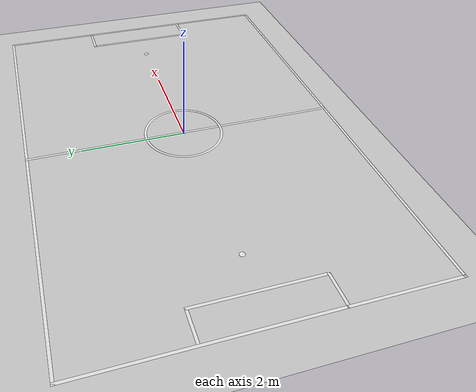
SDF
<?xml version="1.0" ?>
<sdf version="1.4">
  <model name="RoboCup 14 SPL Field">
    <static>true</static>

    <link name="field">
      <pose>0 0 0.01 0 0 0</pose>
      <collision name="collision">
        <geometry>
          <plane>
            <normal>0 0 1</normal>
            <size>10.40 7.40</size>
          </plane>
        </geometry>
        <surface>
          <friction>
            <ode>
              <mu>100</mu>
              <mu2>50</mu2>
            </ode>
          </friction>
        </surface>
      </collision>

      <visual name="carpet">
        <cast_shadows>false</cast_shadows>
        <geometry>
          <plane>
            <normal>0 0 1</normal>
            <size>10.40 7.40</size>
          </plane>
        </geometry>
        <material>
          <script>
            <uri>model://robocup09_spl_field/materials/scripts/</uri>
            <uri>model://robocup09_spl_field/materials/textures/</uri>
            <name>RoboCup/Carpet</name>
          </script>
        </material>
      </visual>

      <visual name="sideline_1">
        <pose>0 3 0.011 0 0 0</pose>
        <cast_shadows>false</cast_shadows>
        <geometry>
          <plane>
            <normal>0 0 1</normal>
            <size>9.05 0.05</size>
          </plane>
        </geometry>
        <material>
          <script>
            <uri>file://media/materials/scripts/gazebo.material</uri>
            <name>Gazebo/White</name>
          </script>
        </material>
      </visual>

      <visual name="sideline_2">
        <pose>0 -3 0.011 0 0 0</pose>
        <cast_shadows>false</cast_shadows>
        <geometry>
          <plane>
            <normal>0 0 1</normal>
            <size>9.05 0.05</size>
          </plane>
        </geometry>
        <material>
          <script>
            <uri>file://media/materials/scripts/gazebo.material</uri>
            <name>Gazebo/White</name>
          </script>
        </material>
      </visual>

      <visual name="endline_1">
        <pose>-4.5 0 0.011 0 0 0</pose>
        <cast_shadows>false</cast_shadows>
        <geometry>
          <plane>
            <normal>0 0 1</normal>
            <size>0.05 6.05</size>
          </plane>
        </geometry>
        <material>
          <script>
            <uri>file://media/materials/scripts/gazebo.material</uri>
            <name>Gazebo/White</name>
          </script>
        </material>
      </visual>

      <visual name="endline_2">
        <pose>4.5 0 0.011 0 0 0</pose>
        <cast_shadows>false</cast_shadows>
        <geometry>
          <plane>
            <normal>0 0 1</normal>
            <size>0.05 6.05</size>
          </plane>
        </geometry>
        <material>
          <script>
            <uri>file://media/materials/scripts/gazebo.material</uri>
            <name>Gazebo/White</name>
          </script>
        </material>
      </visual>

      <visual name="halfway_line">
        <pose>0 0 0.011 0 0 0</pose>
        <cast_shadows>false</cast_shadows>
        <geometry>
          <plane>
            <normal>0 0 1</normal>
            <size>0.05 6.05</size>
          </plane>
        </geometry>
        <material>
          <script>
            <uri>file://media/materials/scripts/gazebo.material</uri>
            <name>Gazebo/White</name>
          </script>
        </material>
      </visual>

      <visual name="area_1_line_a">
        <pose>-3.90 0 0.011 0 0 0</pose>
        <cast_shadows>false</cast_shadows>
        <geometry>
          <plane>
            <normal>0 0 1</normal>
            <size>0.05 2.25</size>
          </plane>
        </geometry>
        <material>
          <script>
            <uri>file://media/materials/scripts/gazebo.material</uri>
            <name>Gazebo/White</name>
          </script>
        </material>
      </visual>

      <visual name="area_2_line_a">
        <pose>-4.20 1.10 0.011 0 0 0</pose>
        <cast_shadows>false</cast_shadows>
        <geometry>
          <plane>
            <normal>0 0 1</normal>
            <size>0.65 0.05</size>
          </plane>
        </geometry>
        <material>
          <script>
            <uri>file://media/materials/scripts/gazebo.material</uri>
            <name>Gazebo/White</name>
          </script>
        </material>
      </visual>

      <visual name="area_3_line_a">
        <pose>-4.20 -1.10 0.011 0 0 0</pose>
        <cast_shadows>false</cast_shadows>
        <geometry>
          <plane>
            <normal>0 0 1</normal>
            <size>0.65 0.05</size>
          </plane>
        </geometry>
        <material>
          <script>
            <uri>file://media/materials/scripts/gazebo.material</uri>
            <name>Gazebo/White</name>
          </script>
        </material>
      </visual>

      <visual name="area_1_line_b">
        <pose>3.90 0 0.011 0 0 0</pose>
        <cast_shadows>false</cast_shadows>
        <geometry>
          <plane>
            <normal>0 0 1</normal>
            <size>0.05 2.25</size>
          </plane>
        </geometry>
        <material>
          <script>
            <uri>file://media/materials/scripts/gazebo.material</uri>
            <name>Gazebo/White</name>
          </script>
        </material>
      </visual>

      <visual name="area_2_line_b">
        <pose>4.20 1.10 0.011 0 0 0</pose>
        <cast_shadows>false</cast_shadows>
        <geometry>
          <plane>
            <normal>0 0 1</normal>
            <size>0.65 0.05</size>
          </plane>
        </geometry>
        <material>
          <script>
            <uri>file://media/materials/scripts/gazebo.material</uri>
            <name>Gazebo/White</name>
          </script>
        </material>
      </visual>

      <visual name="area_3_line_b">
        <pose>4.20 -1.10 0.011 0 0 0</pose>
        <cast_shadows>false</cast_shadows>
        <geometry>
          <plane>
            <normal>0 0 1</normal>
            <size>0.65 0.05</size>
          </plane>
        </geometry>
        <material>
          <script>
            <uri>file://media/materials/scripts/gazebo.material</uri>
            <name>Gazebo/White</name>
          </script>
        </material>
      </visual>

      <visual name="penalty_a">
        <pose>-3.20 0 0.01 0 0 0</pose>
        <cast_shadows>false</cast_shadows>
        <geometry>
          <cylinder>
            <radius>0.05</radius>
            <length>0.0005</length>
          </cylinder>
        </geometry>
        <material>
          <script>
            <uri>file://media/materials/scripts/gazebo.material</uri>
            <name>Gazebo/White</name>
          </script>
        </material>
      </visual>

      <visual name="penalty_b">
        <pose>3.20 0 0.01 0 0 0</pose>
        <cast_shadows>false</cast_shadows>
        <geometry>
          <cylinder>
            <radius>0.05</radius>
            <length>0.0005</length>
          </cylinder>
        </geometry>
        <material>
          <script>
            <uri>file://media/materials/scripts/gazebo.material</uri>
            <name>Gazebo/White</name>
          </script>
        </material>
      </visual>

      <visual name="center_point">
        <pose>0 0 0.01 0 0 0</pose>
        <cast_shadows>false</cast_shadows>
        <geometry>
          <cylinder>
            <radius>0.05</radius>
            <length>0.0005</length>
          </cylinder>
        </geometry>
        <material>
          <script>
            <uri>file://media/materials/scripts/gazebo.material</uri>
            <name>Gazebo/White</name>
          </script>
        </material>
      </visual>

      <visual name="center_circle">
        <pose>0 0 0.005 0 0 0</pose>
        <cast_shadows>false</cast_shadows>
        <geometry>
          <mesh>
            <scale>1 1 0.75</scale>
            <uri>model://robocup14_spl_field/meshes/circle.dae</uri>
          </mesh>
        </geometry>
        <material>
          <script>
            <uri>file://media/materials/scripts/gazebo.material</uri>
            <name>Gazebo/White</name>
          </script>
        </material>
      </visual>
    </link>

  </model>
</sdf>
